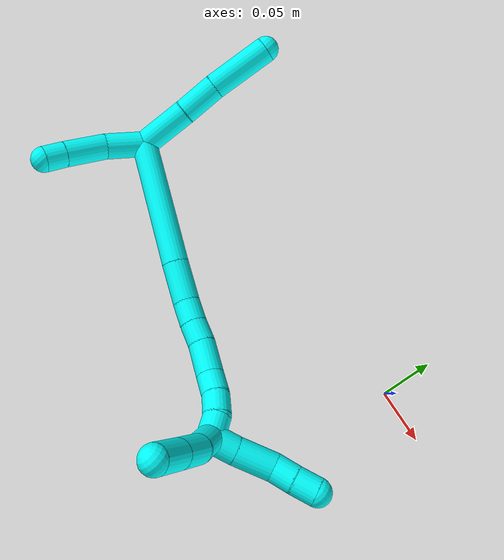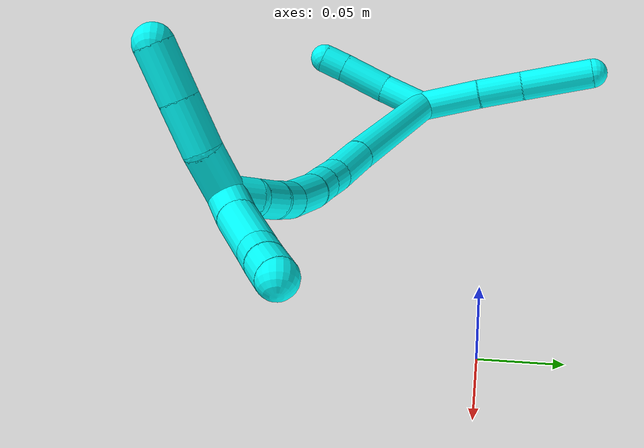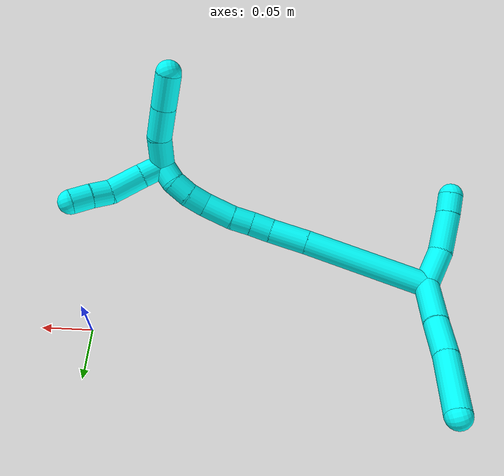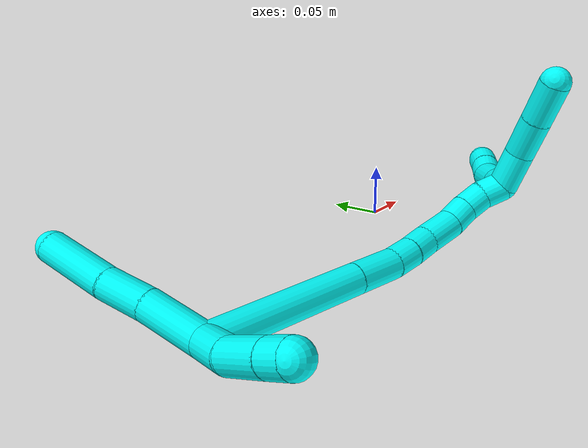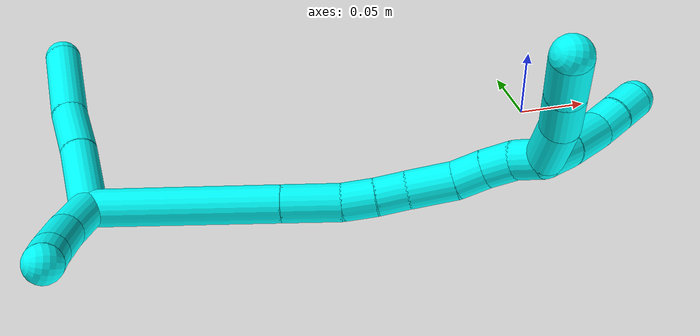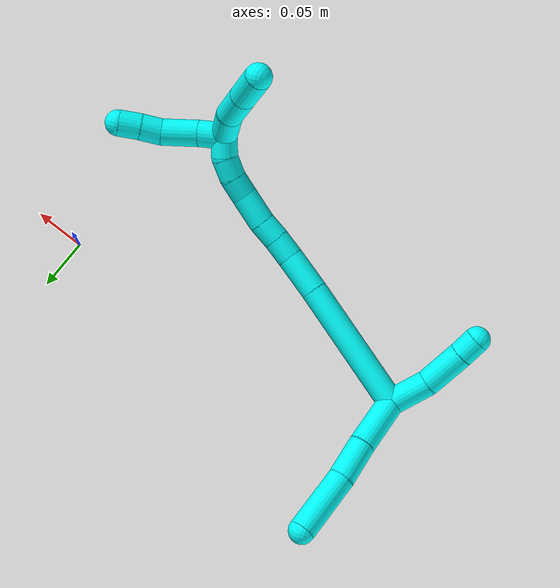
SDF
<sdf version="1.7">
 <world name="default">
  <model name="3">
   <static>0</static>
   <link name="3">
    <collision name="collision-cylinder-e_1_2_8">
     <pose>-0.007556 0.024379 -0.001117 -1.61658 -0.300245 0.31409</pose>
     <geometry><cylinder><radius>0.0125</radius><length>0.051095</length></cylinder></geometry>
     <surface>
      <friction><ode><mu>1.16</mu><mu2>1.16</mu2><slip1>0</slip1><slip2>0</slip2></ode></friction>
      <contact><ode><kp>1e+06</kp><kd>1</kd><max_vel>0</max_vel><min_depth>0.001</min_depth></ode></contact>
     </surface>
    </collision>
    <visual name="visual-cylinder-e_1_2_8">
     <pose>-0.007556 0.024379 -0.001117 -1.61658 -0.300245 0.31409</pose>
     <geometry><cylinder><radius>0.0125</radius><length>0.051095</length></cylinder></geometry>
     <material><ambient>0.003922 1 0.996078 1</ambient></material>
    </visual>
    <collision name="collision-cylinder-e_2_8_9">
     <pose>-0.021895 0.066423 -0.002556 -1.58902 -0.366581 0.37317</pose>
     <geometry><cylinder><radius>0.0125</radius><length>0.03785</length></cylinder></geometry>
     <surface>
      <friction><ode><mu>1.16</mu><mu2>1.16</mu2><slip1>0</slip1><slip2>0</slip2></ode></friction>
      <contact><ode><kp>1e+06</kp><kd>1</kd><max_vel>0</max_vel><min_depth>0.001</min_depth></ode></contact>
     </surface>
    </collision>
    <visual name="visual-cylinder-e_2_8_9">
     <pose>-0.021895 0.066423 -0.002556 -1.58902 -0.366581 0.37317</pose>
     <geometry><cylinder><radius>0.0125</radius><length>0.03785</length></cylinder></geometry>
     <material><ambient>0.003922 1 0.996078 1</ambient></material>
    </visual>
    <collision name="collision-cylinder-e_3_9_6">
     <pose>-0.037811 0.113103 -0.005454 -1.65934 -0.303829 0.331505</pose>
     <geometry><cylinder><radius>0.0125</radius><length>0.061055</length></cylinder></geometry>
     <surface>
      <friction><ode><mu>1.16</mu><mu2>1.16</mu2><slip1>0</slip1><slip2>0</slip2></ode></friction>
      <contact><ode><kp>1e+06</kp><kd>1</kd><max_vel>0</max_vel><min_depth>0.001</min_depth></ode></contact>
     </surface>
    </collision>
    <visual name="visual-cylinder-e_3_9_6">
     <pose>-0.037811 0.113103 -0.005454 -1.65934 -0.303829 0.331505</pose>
     <geometry><cylinder><radius>0.0125</radius><length>0.061055</length></cylinder></geometry>
     <material><ambient>0.003922 1 0.996078 1</ambient></material>
    </visual>
    <collision name="collision-cylinder-e_1_2_10">
     <pose>0.008482 -0.01277 0.011734 0.827634 0.454873 0.202591</pose>
     <geometry><cylinder><radius>0.0125</radius><length>0.03861</length></cylinder></geometry>
     <surface>
      <friction><ode><mu>1.16</mu><mu2>1.16</mu2><slip1>0</slip1><slip2>0</slip2></ode></friction>
      <contact><ode><kp>1e+06</kp><kd>1</kd><max_vel>0</max_vel><min_depth>0.001</min_depth></ode></contact>
     </surface>
    </collision>
    <visual name="visual-cylinder-e_1_2_10">
     <pose>0.008482 -0.01277 0.011734 0.827634 0.454873 0.202591</pose>
     <geometry><cylinder><radius>0.0125</radius><length>0.03861</length></cylinder></geometry>
     <material><ambient>0.003922 1 0.996078 1</ambient></material>
    </visual>
    <collision name="collision-cylinder-e_2_10_11">
     <pose>0.03026 -0.037691 0.033364 0.88738 0.70358 0.345446</pose>
     <geometry><cylinder><radius>0.0125</radius><length>0.041104</length></cylinder></geometry>
     <surface>
      <friction><ode><mu>1.16</mu><mu2>1.16</mu2><slip1>0</slip1><slip2>0</slip2></ode></friction>
      <contact><ode><kp>1e+06</kp><kd>1</kd><max_vel>0</max_vel><min_depth>0.001</min_depth></ode></contact>
     </surface>
    </collision>
    <visual name="visual-cylinder-e_2_10_11">
     <pose>0.03026 -0.037691 0.033364 0.88738 0.70358 0.345446</pose>
     <geometry><cylinder><radius>0.0125</radius><length>0.041104</length></cylinder></geometry>
     <material><ambient>0.003922 1 0.996078 1</ambient></material>
    </visual>
    <collision name="collision-cylinder-e_3_11_5">
     <pose>0.050306 -0.055962 0.047718 0.941063 0.728149 0.382894</pose>
     <geometry><cylinder><radius>0.0125</radius><length>0.020286</length></cylinder></geometry>
     <surface>
      <friction><ode><mu>1.16</mu><mu2>1.16</mu2><slip1>0</slip1><slip2>0</slip2></ode></friction>
      <contact><ode><kp>1e+06</kp><kd>1</kd><max_vel>0</max_vel><min_depth>0.001</min_depth></ode></contact>
     </surface>
    </collision>
    <visual name="visual-cylinder-e_3_11_5">
     <pose>0.050306 -0.055962 0.047718 0.941063 0.728149 0.382894</pose>
     <geometry><cylinder><radius>0.0125</radius><length>0.020286</length></cylinder></geometry>
     <material><ambient>0.003922 1 0.996078 1</ambient></material>
    </visual>
    <collision name="collision-cylinder-e_1_2_12">
     <pose>0.037867 -0.011302 -0.049805 2.91845 0.638004 2.48752</pose>
     <geometry><cylinder><radius>0.0125</radius><length>0.127157</length></cylinder></geometry>
     <surface>
      <friction><ode><mu>1.16</mu><mu2>1.16</mu2><slip1>0</slip1><slip2>0</slip2></ode></friction>
      <contact><ode><kp>1e+06</kp><kd>1</kd><max_vel>0</max_vel><min_depth>0.001</min_depth></ode></contact>
     </surface>
    </collision>
    <visual name="visual-cylinder-e_1_2_12">
     <pose>0.037867 -0.011302 -0.049805 2.91845 0.638004 2.48752</pose>
     <geometry><cylinder><radius>0.0125</radius><length>0.127157</length></cylinder></geometry>
     <material><ambient>0.003922 1 0.996078 1</ambient></material>
    </visual>
    <collision name="collision-cylinder-e_2_12_13">
     <pose>0.08689 -0.025871 -0.115141 2.93423 0.61271 2.50596</pose>
     <geometry><cylinder><radius>0.0125</radius><length>0.038798</length></cylinder></geometry>
     <surface>
      <friction><ode><mu>1.16</mu><mu2>1.16</mu2><slip1>0</slip1><slip2>0</slip2></ode></friction>
      <contact><ode><kp>1e+06</kp><kd>1</kd><max_vel>0</max_vel><min_depth>0.001</min_depth></ode></contact>
     </surface>
    </collision>
    <visual name="visual-cylinder-e_2_12_13">
     <pose>0.08689 -0.025871 -0.115141 2.93423 0.61271 2.50596</pose>
     <geometry><cylinder><radius>0.0125</radius><length>0.038798</length></cylinder></geometry>
     <material><ambient>0.003922 1 0.996078 1</ambient></material>
    </visual>
    <collision name="collision-cylinder-e_3_13_14">
     <pose>0.105161 -0.029831 -0.138929 3.05796 0.709442 2.91661</pose>
     <geometry><cylinder><radius>0.0125</radius><length>0.021846</length></cylinder></geometry>
     <surface>
      <friction><ode><mu>1.16</mu><mu2>1.16</mu2><slip1>0</slip1><slip2>0</slip2></ode></friction>
      <contact><ode><kp>1e+06</kp><kd>1</kd><max_vel>0</max_vel><min_depth>0.001</min_depth></ode></contact>
     </surface>
    </collision>
    <visual name="visual-cylinder-e_3_13_14">
     <pose>0.105161 -0.029831 -0.138929 3.05796 0.709442 2.91661</pose>
     <geometry><cylinder><radius>0.0125</radius><length>0.021846</length></cylinder></geometry>
     <material><ambient>0.003922 1 0.996078 1</ambient></material>
    </visual>
    <collision name="collision-cylinder-e_4_14_15">
     <pose>0.118968 -0.03039 -0.155153 -3.12479 0.698606 -3.09548</pose>
     <geometry><cylinder><radius>0.0125</radius><length>0.020809</length></cylinder></geometry>
     <surface>
      <friction><ode><mu>1.16</mu><mu2>1.16</mu2><slip1>0</slip1><slip2>0</slip2></ode></friction>
      <contact><ode><kp>1e+06</kp><kd>1</kd><max_vel>0</max_vel><min_depth>0.001</min_depth></ode></contact>
     </surface>
    </collision>
    <visual name="visual-cylinder-e_4_14_15">
     <pose>0.118968 -0.03039 -0.155153 -3.12479 0.698606 -3.09548</pose>
     <geometry><cylinder><radius>0.0125</radius><length>0.020809</length></cylinder></geometry>
     <material><ambient>0.003922 1 0.996078 1</ambient></material>
    </visual>
    <collision name="collision-cylinder-e_5_15_16">
     <pose>0.13694 -0.031141 -0.173648 3.05775 0.818123 2.94867</pose>
     <geometry><cylinder><radius>0.0125</radius><length>0.030913</length></cylinder></geometry>
     <surface>
      <friction><ode><mu>1.16</mu><mu2>1.16</mu2><slip1>0</slip1><slip2>0</slip2></ode></friction>
      <contact><ode><kp>1e+06</kp><kd>1</kd><max_vel>0</max_vel><min_depth>0.001</min_depth></ode></contact>
     </surface>
    </collision>
    <visual name="visual-cylinder-e_5_15_16">
     <pose>0.13694 -0.031141 -0.173648 3.05775 0.818123 2.94867</pose>
     <geometry><cylinder><radius>0.0125</radius><length>0.030913</length></cylinder></geometry>
     <material><ambient>0.003922 1 0.996078 1</ambient></material>
    </visual>
    <collision name="collision-cylinder-e_6_16_17">
     <pose>0.156538 -0.031353 -0.189861 -3.0239 0.967986 -2.91839</pose>
     <geometry><cylinder><radius>0.0125</radius><length>0.020193</length></cylinder></geometry>
     <surface>
      <friction><ode><mu>1.16</mu><mu2>1.16</mu2><slip1>0</slip1><slip2>0</slip2></ode></friction>
      <contact><ode><kp>1e+06</kp><kd>1</kd><max_vel>0</max_vel><min_depth>0.001</min_depth></ode></contact>
     </surface>
    </collision>
    <visual name="visual-cylinder-e_6_16_17">
     <pose>0.156538 -0.031353 -0.189861 -3.0239 0.967986 -2.91839</pose>
     <geometry><cylinder><radius>0.0125</radius><length>0.020193</length></cylinder></geometry>
     <material><ambient>0.003922 1 0.996078 1</ambient></material>
    </visual>
    <collision name="collision-cylinder-e_7_17_18">
     <pose>0.173839 -0.031419 -0.200146 2.9826 1.0924 2.88098</pose>
     <geometry><cylinder><radius>0.0125</radius><length>0.02024</length></cylinder></geometry>
     <surface>
      <friction><ode><mu>1.16</mu><mu2>1.16</mu2><slip1>0</slip1><slip2>0</slip2></ode></friction>
      <contact><ode><kp>1e+06</kp><kd>1</kd><max_vel>0</max_vel><min_depth>0.001</min_depth></ode></contact>
     </surface>
    </collision>
    <visual name="visual-cylinder-e_7_17_18">
     <pose>0.173839 -0.031419 -0.200146 2.9826 1.0924 2.88098</pose>
     <geometry><cylinder><radius>0.0125</radius><length>0.02024</length></cylinder></geometry>
     <material><ambient>0.003922 1 0.996078 1</ambient></material>
    </visual>
    <collision name="collision-cylinder-e_8_18_1">
     <pose>0.191795 -0.035776 -0.207364 2.19713 1.10887 1.76216</pose>
     <geometry><cylinder><radius>0.0125</radius><length>0.020047</length></cylinder></geometry>
     <surface>
      <friction><ode><mu>1.16</mu><mu2>1.16</mu2><slip1>0</slip1><slip2>0</slip2></ode></friction>
      <contact><ode><kp>1e+06</kp><kd>1</kd><max_vel>0</max_vel><min_depth>0.001</min_depth></ode></contact>
     </surface>
    </collision>
    <visual name="visual-cylinder-e_8_18_1">
     <pose>0.191795 -0.035776 -0.207364 2.19713 1.10887 1.76216</pose>
     <geometry><cylinder><radius>0.0125</radius><length>0.020047</length></cylinder></geometry>
     <material><ambient>0.003922 1 0.996078 1</ambient></material>
    </visual>
    <collision name="collision-cylinder-e_1_1_19">
     <pose>0.215485 -0.036398 -0.204008 -0.46489 1.14445 -0.302623</pose>
     <geometry><cylinder><radius>0.0125</radius><length>0.032329</length></cylinder></geometry>
     <surface>
      <friction><ode><mu>1.16</mu><mu2>1.16</mu2><slip1>0</slip1><slip2>0</slip2></ode></friction>
      <contact><ode><kp>1e+06</kp><kd>1</kd><max_vel>0</max_vel><min_depth>0.001</min_depth></ode></contact>
     </surface>
    </collision>
    <visual name="visual-cylinder-e_1_1_19">
     <pose>0.215485 -0.036398 -0.204008 -0.46489 1.14445 -0.302623</pose>
     <geometry><cylinder><radius>0.0125</radius><length>0.032329</length></cylinder></geometry>
     <material><ambient>0.003922 1 0.996078 1</ambient></material>
    </visual>
    <collision name="collision-cylinder-e_2_19_20">
     <pose>0.243515 -0.03129 -0.188606 -0.220304 0.943091 -0.112673</pose>
     <geometry><cylinder><radius>0.0125</radius><length>0.032896</length></cylinder></geometry>
     <surface>
      <friction><ode><mu>1.16</mu><mu2>1.16</mu2><slip1>0</slip1><slip2>0</slip2></ode></friction>
      <contact><ode><kp>1e+06</kp><kd>1</kd><max_vel>0</max_vel><min_depth>0.001</min_depth></ode></contact>
     </surface>
    </collision>
    <visual name="visual-cylinder-e_2_19_20">
     <pose>0.243515 -0.03129 -0.188606 -0.220304 0.943091 -0.112673</pose>
     <geometry><cylinder><radius>0.0125</radius><length>0.032896</length></cylinder></geometry>
     <material><ambient>0.003922 1 0.996078 1</ambient></material>
    </visual>
    <collision name="collision-cylinder-e_3_20_4">
     <pose>0.270822 -0.026877 -0.16912 -0.224954 0.935358 -0.113971</pose>
     <geometry><cylinder><radius>0.0125</radius><length>0.034775</length></cylinder></geometry>
     <surface>
      <friction><ode><mu>1.16</mu><mu2>1.16</mu2><slip1>0</slip1><slip2>0</slip2></ode></friction>
      <contact><ode><kp>1e+06</kp><kd>1</kd><max_vel>0</max_vel><min_depth>0.001</min_depth></ode></contact>
     </surface>
    </collision>
    <visual name="visual-cylinder-e_3_20_4">
     <pose>0.270822 -0.026877 -0.16912 -0.224954 0.935358 -0.113971</pose>
     <geometry><cylinder><radius>0.0125</radius><length>0.034775</length></cylinder></geometry>
     <material><ambient>0.003922 1 0.996078 1</ambient></material>
    </visual>
    <collision name="collision-cylinder-e_1_1_21">
     <pose>0.20092 -0.034817 -0.220846 -2.74277 0.012883 -0.063724</pose>
     <geometry><cylinder><radius>0.0125</radius><length>0.023579</length></cylinder></geometry>
     <surface>
      <friction><ode><mu>1.16</mu><mu2>1.16</mu2><slip1>0</slip1><slip2>0</slip2></ode></friction>
      <contact><ode><kp>1e+06</kp><kd>1</kd><max_vel>0</max_vel><min_depth>0.001</min_depth></ode></contact>
     </surface>
    </collision>
    <visual name="visual-cylinder-e_1_1_21">
     <pose>0.20092 -0.034817 -0.220846 -2.74277 0.012883 -0.063724</pose>
     <geometry><cylinder><radius>0.0125</radius><length>0.023579</length></cylinder></geometry>
     <material><ambient>0.003922 1 0.996078 1</ambient></material>
    </visual>
    <collision name="collision-cylinder-e_2_21_22">
     <pose>0.200884 -0.022128 -0.2474 -2.6645 -0.010631 0.04371</pose>
     <geometry><cylinder><radius>0.0125</radius><length>0.035327</length></cylinder></geometry>
     <surface>
      <friction><ode><mu>1.16</mu><mu2>1.16</mu2><slip1>0</slip1><slip2>0</slip2></ode></friction>
      <contact><ode><kp>1e+06</kp><kd>1</kd><max_vel>0</max_vel><min_depth>0.001</min_depth></ode></contact>
     </surface>
    </collision>
    <visual name="visual-cylinder-e_2_21_22">
     <pose>0.200884 -0.022128 -0.2474 -2.6645 -0.010631 0.04371</pose>
     <geometry><cylinder><radius>0.0125</radius><length>0.035327</length></cylinder></geometry>
     <material><ambient>0.003922 1 0.996078 1</ambient></material>
    </visual>
    <collision name="collision-cylinder-e_3_22_23">
     <pose>0.203633 -0.008723 -0.271246 -2.56582 0.293277 -0.925356</pose>
     <geometry><cylinder><radius>0.0125</radius><length>0.020317</length></cylinder></geometry>
     <surface>
      <friction><ode><mu>1.16</mu><mu2>1.16</mu2><slip1>0</slip1><slip2>0</slip2></ode></friction>
      <contact><ode><kp>1e+06</kp><kd>1</kd><max_vel>0</max_vel><min_depth>0.001</min_depth></ode></contact>
     </surface>
    </collision>
    <visual name="visual-cylinder-e_3_22_23">
     <pose>0.203633 -0.008723 -0.271246 -2.56582 0.293277 -0.925356</pose>
     <geometry><cylinder><radius>0.0125</radius><length>0.020317</length></cylinder></geometry>
     <material><ambient>0.003922 1 0.996078 1</ambient></material>
    </visual>
    <collision name="collision-cylinder-e_4_23_3">
     <pose>0.208779 0.00207 -0.287937 -2.56928 0.214347 -0.701097</pose>
     <geometry><cylinder><radius>0.0125</radius><length>0.020778</length></cylinder></geometry>
     <surface>
      <friction><ode><mu>1.16</mu><mu2>1.16</mu2><slip1>0</slip1><slip2>0</slip2></ode></friction>
      <contact><ode><kp>1e+06</kp><kd>1</kd><max_vel>0</max_vel><min_depth>0.001</min_depth></ode></contact>
     </surface>
    </collision>
    <visual name="visual-cylinder-e_4_23_3">
     <pose>0.208779 0.00207 -0.287937 -2.56928 0.214347 -0.701097</pose>
     <geometry><cylinder><radius>0.0125</radius><length>0.020778</length></cylinder></geometry>
     <material><ambient>0.003922 1 0.996078 1</ambient></material>
    </visual>
    <collision name="collision-sphere-3">
     <pose>0.210989 0.007567 -0.29647 0 -0 0</pose>
     <geometry><sphere><radius>0.0125</radius></sphere></geometry>
     <surface>
      <friction><ode><mu>1.16</mu><mu2>1.16</mu2><slip1>0</slip1><slip2>0</slip2></ode></friction>
      <contact><ode><kp>1e+06</kp><kd>1</kd><max_vel>0</max_vel><min_depth>0.001</min_depth></ode></contact>
     </surface>
    </collision>
    <visual name="visual-sphere-3">
     <pose>0.210989 0.007567 -0.29647 0 -0 0</pose>
     <geometry><sphere><radius>0.0125</radius></sphere></geometry>
     <material><ambient>0.003922 1 0.996078 1</ambient></material>
    </visual>
    <collision name="collision-sphere-23">
     <pose>0.206569 -0.003428 -0.279403 0 -0 0</pose>
     <geometry><sphere><radius>0.0125</radius></sphere></geometry>
     <surface>
      <friction><ode><mu>1.16</mu><mu2>1.16</mu2><slip1>0</slip1><slip2>0</slip2></ode></friction>
      <contact><ode><kp>1e+06</kp><kd>1</kd><max_vel>0</max_vel><min_depth>0.001</min_depth></ode></contact>
     </surface>
    </collision>
    <visual name="visual-sphere-23">
     <pose>0.206569 -0.003428 -0.279403 0 -0 0</pose>
     <geometry><sphere><radius>0.0125</radius></sphere></geometry>
     <material><ambient>0.003922 1 0.996078 1</ambient></material>
    </visual>
    <collision name="collision-sphere-22">
     <pose>0.200696 -0.014018 -0.26309 0 -0 0</pose>
     <geometry><sphere><radius>0.0125</radius></sphere></geometry>
     <surface>
      <friction><ode><mu>1.16</mu><mu2>1.16</mu2><slip1>0</slip1><slip2>0</slip2></ode></friction>
      <contact><ode><kp>1e+06</kp><kd>1</kd><max_vel>0</max_vel><min_depth>0.001</min_depth></ode></contact>
     </surface>
    </collision>
    <visual name="visual-sphere-22">
     <pose>0.200696 -0.014018 -0.26309 0 -0 0</pose>
     <geometry><sphere><radius>0.0125</radius></sphere></geometry>
     <material><ambient>0.003922 1 0.996078 1</ambient></material>
    </visual>
    <collision name="collision-sphere-21">
     <pose>0.201072 -0.030239 -0.231709 0 -0 0</pose>
     <geometry><sphere><radius>0.0125</radius></sphere></geometry>
     <surface>
      <friction><ode><mu>1.16</mu><mu2>1.16</mu2><slip1>0</slip1><slip2>0</slip2></ode></friction>
      <contact><ode><kp>1e+06</kp><kd>1</kd><max_vel>0</max_vel><min_depth>0.001</min_depth></ode></contact>
     </surface>
    </collision>
    <visual name="visual-sphere-21">
     <pose>0.201072 -0.030239 -0.231709 0 -0 0</pose>
     <geometry><sphere><radius>0.0125</radius></sphere></geometry>
     <material><ambient>0.003922 1 0.996078 1</ambient></material>
    </visual>
    <collision name="collision-sphere-4">
     <pose>0.284815 -0.024575 -0.15906 0 -0 0</pose>
     <geometry><sphere><radius>0.0125</radius></sphere></geometry>
     <surface>
      <friction><ode><mu>1.16</mu><mu2>1.16</mu2><slip1>0</slip1><slip2>0</slip2></ode></friction>
      <contact><ode><kp>1e+06</kp><kd>1</kd><max_vel>0</max_vel><min_depth>0.001</min_depth></ode></contact>
     </surface>
    </collision>
    <visual name="visual-sphere-4">
     <pose>0.284815 -0.024575 -0.15906 0 -0 0</pose>
     <geometry><sphere><radius>0.0125</radius></sphere></geometry>
     <material><ambient>0.003922 1 0.996078 1</ambient></material>
    </visual>
    <collision name="collision-sphere-20">
     <pose>0.256828 -0.029179 -0.17918 0 -0 0</pose>
     <geometry><sphere><radius>0.0125</radius></sphere></geometry>
     <surface>
      <friction><ode><mu>1.16</mu><mu2>1.16</mu2><slip1>0</slip1><slip2>0</slip2></ode></friction>
      <contact><ode><kp>1e+06</kp><kd>1</kd><max_vel>0</max_vel><min_depth>0.001</min_depth></ode></contact>
     </surface>
    </collision>
    <visual name="visual-sphere-20">
     <pose>0.256828 -0.029179 -0.17918 0 -0 0</pose>
     <geometry><sphere><radius>0.0125</radius></sphere></geometry>
     <material><ambient>0.003922 1 0.996078 1</ambient></material>
    </visual>
    <collision name="collision-sphere-11">
     <pose>0.043556 -0.049843 0.04326 0 -0 0</pose>
     <geometry><sphere><radius>0.0125</radius></sphere></geometry>
     <surface>
      <friction><ode><mu>1.16</mu><mu2>1.16</mu2><slip1>0</slip1><slip2>0</slip2></ode></friction>
      <contact><ode><kp>1e+06</kp><kd>1</kd><max_vel>0</max_vel><min_depth>0.001</min_depth></ode></contact>
     </surface>
    </collision>
    <visual name="visual-sphere-11">
     <pose>0.043556 -0.049843 0.04326 0 -0 0</pose>
     <geometry><sphere><radius>0.0125</radius></sphere></geometry>
     <material><ambient>0.003922 1 0.996078 1</ambient></material>
    </visual>
    <collision name="collision-sphere-10">
     <pose>0.016963 -0.025539 0.023468 0 -0 0</pose>
     <geometry><sphere><radius>0.0125</radius></sphere></geometry>
     <surface>
      <friction><ode><mu>1.16</mu><mu2>1.16</mu2><slip1>0</slip1><slip2>0</slip2></ode></friction>
      <contact><ode><kp>1e+06</kp><kd>1</kd><max_vel>0</max_vel><min_depth>0.001</min_depth></ode></contact>
     </surface>
    </collision>
    <visual name="visual-sphere-10">
     <pose>0.016963 -0.025539 0.023468 0 -0 0</pose>
     <geometry><sphere><radius>0.0125</radius></sphere></geometry>
     <material><ambient>0.003922 1 0.996078 1</ambient></material>
    </visual>
    <collision name="collision-sphere-6">
     <pose>-0.046944 0.142118 -0.008029 0 -0 0</pose>
     <geometry><sphere><radius>0.0125</radius></sphere></geometry>
     <surface>
      <friction><ode><mu>1.16</mu><mu2>1.16</mu2><slip1>0</slip1><slip2>0</slip2></ode></friction>
      <contact><ode><kp>1e+06</kp><kd>1</kd><max_vel>0</max_vel><min_depth>0.001</min_depth></ode></contact>
     </surface>
    </collision>
    <visual name="visual-sphere-6">
     <pose>-0.046944 0.142118 -0.008029 0 -0 0</pose>
     <geometry><sphere><radius>0.0125</radius></sphere></geometry>
     <material><ambient>0.003922 1 0.996078 1</ambient></material>
    </visual>
    <collision name="collision-sphere-9">
     <pose>-0.028678 0.084088 -0.002878 0 -0 0</pose>
     <geometry><sphere><radius>0.0125</radius></sphere></geometry>
     <surface>
      <friction><ode><mu>1.16</mu><mu2>1.16</mu2><slip1>0</slip1><slip2>0</slip2></ode></friction>
      <contact><ode><kp>1e+06</kp><kd>1</kd><max_vel>0</max_vel><min_depth>0.001</min_depth></ode></contact>
     </surface>
    </collision>
    <visual name="visual-sphere-9">
     <pose>-0.028678 0.084088 -0.002878 0 -0 0</pose>
     <geometry><sphere><radius>0.0125</radius></sphere></geometry>
     <material><ambient>0.003922 1 0.996078 1</ambient></material>
    </visual>
    <collision name="collision-sphere-2">
     <geometry><sphere><radius>0.0125</radius></sphere></geometry>
     <surface>
      <friction><ode><mu>1.16</mu><mu2>1.16</mu2><slip1>0</slip1><slip2>0</slip2></ode></friction>
      <contact><ode><kp>1e+06</kp><kd>1</kd><max_vel>0</max_vel><min_depth>0.001</min_depth></ode></contact>
     </surface>
    </collision>
    <visual name="visual-sphere-2">
     <geometry><sphere><radius>0.0125</radius></sphere></geometry>
     <material><ambient>0.003922 1 0.996078 1</ambient></material>
    </visual>
    <collision name="collision-sphere-19">
     <pose>0.230202 -0.033401 -0.198033 0 -0 0</pose>
     <geometry><sphere><radius>0.0125</radius></sphere></geometry>
     <surface>
      <friction><ode><mu>1.16</mu><mu2>1.16</mu2><slip1>0</slip1><slip2>0</slip2></ode></friction>
      <contact><ode><kp>1e+06</kp><kd>1</kd><max_vel>0</max_vel><min_depth>0.001</min_depth></ode></contact>
     </surface>
    </collision>
    <visual name="visual-sphere-19">
     <pose>0.230202 -0.033401 -0.198033 0 -0 0</pose>
     <geometry><sphere><radius>0.0125</radius></sphere></geometry>
     <material><ambient>0.003922 1 0.996078 1</ambient></material>
    </visual>
    <collision name="collision-sphere-8">
     <pose>-0.015112 0.048758 -0.002234 0 -0 0</pose>
     <geometry><sphere><radius>0.0125</radius></sphere></geometry>
     <surface>
      <friction><ode><mu>1.16</mu><mu2>1.16</mu2><slip1>0</slip1><slip2>0</slip2></ode></friction>
      <contact><ode><kp>1e+06</kp><kd>1</kd><max_vel>0</max_vel><min_depth>0.001</min_depth></ode></contact>
     </surface>
    </collision>
    <visual name="visual-sphere-8">
     <pose>-0.015112 0.048758 -0.002234 0 -0 0</pose>
     <geometry><sphere><radius>0.0125</radius></sphere></geometry>
     <material><ambient>0.003922 1 0.996078 1</ambient></material>
    </visual>
    <collision name="collision-sphere-5">
     <pose>0.057056 -0.06208 0.052177 0 -0 0</pose>
     <geometry><sphere><radius>0.0125</radius></sphere></geometry>
     <surface>
      <friction><ode><mu>1.16</mu><mu2>1.16</mu2><slip1>0</slip1><slip2>0</slip2></ode></friction>
      <contact><ode><kp>1e+06</kp><kd>1</kd><max_vel>0</max_vel><min_depth>0.001</min_depth></ode></contact>
     </surface>
    </collision>
    <visual name="visual-sphere-5">
     <pose>0.057056 -0.06208 0.052177 0 -0 0</pose>
     <geometry><sphere><radius>0.0125</radius></sphere></geometry>
     <material><ambient>0.003922 1 0.996078 1</ambient></material>
    </visual>
    <collision name="collision-sphere-12">
     <pose>0.075734 -0.022604 -0.099611 0 -0 0</pose>
     <geometry><sphere><radius>0.0125</radius></sphere></geometry>
     <surface>
      <friction><ode><mu>1.16</mu><mu2>1.16</mu2><slip1>0</slip1><slip2>0</slip2></ode></friction>
      <contact><ode><kp>1e+06</kp><kd>1</kd><max_vel>0</max_vel><min_depth>0.001</min_depth></ode></contact>
     </surface>
    </collision>
    <visual name="visual-sphere-12">
     <pose>0.075734 -0.022604 -0.099611 0 -0 0</pose>
     <geometry><sphere><radius>0.0125</radius></sphere></geometry>
     <material><ambient>0.003922 1 0.996078 1</ambient></material>
    </visual>
    <collision name="collision-sphere-13">
     <pose>0.098046 -0.029139 -0.130671 0 -0 0</pose>
     <geometry><sphere><radius>0.0125</radius></sphere></geometry>
     <surface>
      <friction><ode><mu>1.16</mu><mu2>1.16</mu2><slip1>0</slip1><slip2>0</slip2></ode></friction>
      <contact><ode><kp>1e+06</kp><kd>1</kd><max_vel>0</max_vel><min_depth>0.001</min_depth></ode></contact>
     </surface>
    </collision>
    <visual name="visual-sphere-13">
     <pose>0.098046 -0.029139 -0.130671 0 -0 0</pose>
     <geometry><sphere><radius>0.0125</radius></sphere></geometry>
     <material><ambient>0.003922 1 0.996078 1</ambient></material>
    </visual>
    <collision name="collision-sphere-14">
     <pose>0.112276 -0.030523 -0.147188 0 -0 0</pose>
     <geometry><sphere><radius>0.0125</radius></sphere></geometry>
     <surface>
      <friction><ode><mu>1.16</mu><mu2>1.16</mu2><slip1>0</slip1><slip2>0</slip2></ode></friction>
      <contact><ode><kp>1e+06</kp><kd>1</kd><max_vel>0</max_vel><min_depth>0.001</min_depth></ode></contact>
     </surface>
    </collision>
    <visual name="visual-sphere-14">
     <pose>0.112276 -0.030523 -0.147188 0 -0 0</pose>
     <geometry><sphere><radius>0.0125</radius></sphere></geometry>
     <material><ambient>0.003922 1 0.996078 1</ambient></material>
    </visual>
    <collision name="collision-sphere-15">
     <pose>0.125659 -0.030256 -0.163119 0 -0 0</pose>
     <geometry><sphere><radius>0.0125</radius></sphere></geometry>
     <surface>
      <friction><ode><mu>1.16</mu><mu2>1.16</mu2><slip1>0</slip1><slip2>0</slip2></ode></friction>
      <contact><ode><kp>1e+06</kp><kd>1</kd><max_vel>0</max_vel><min_depth>0.001</min_depth></ode></contact>
     </surface>
    </collision>
    <visual name="visual-sphere-15">
     <pose>0.125659 -0.030256 -0.163119 0 -0 0</pose>
     <geometry><sphere><radius>0.0125</radius></sphere></geometry>
     <material><ambient>0.003922 1 0.996078 1</ambient></material>
    </visual>
    <collision name="collision-sphere-16">
     <pose>0.148221 -0.032026 -0.184177 0 -0 0</pose>
     <geometry><sphere><radius>0.0125</radius></sphere></geometry>
     <surface>
      <friction><ode><mu>1.16</mu><mu2>1.16</mu2><slip1>0</slip1><slip2>0</slip2></ode></friction>
      <contact><ode><kp>1e+06</kp><kd>1</kd><max_vel>0</max_vel><min_depth>0.001</min_depth></ode></contact>
     </surface>
    </collision>
    <visual name="visual-sphere-16">
     <pose>0.148221 -0.032026 -0.184177 0 -0 0</pose>
     <geometry><sphere><radius>0.0125</radius></sphere></geometry>
     <material><ambient>0.003922 1 0.996078 1</ambient></material>
    </visual>
    <collision name="collision-sphere-17">
     <pose>0.164855 -0.030681 -0.195546 0 -0 0</pose>
     <geometry><sphere><radius>0.0125</radius></sphere></geometry>
     <surface>
      <friction><ode><mu>1.16</mu><mu2>1.16</mu2><slip1>0</slip1><slip2>0</slip2></ode></friction>
      <contact><ode><kp>1e+06</kp><kd>1</kd><max_vel>0</max_vel><min_depth>0.001</min_depth></ode></contact>
     </surface>
    </collision>
    <visual name="visual-sphere-17">
     <pose>0.164855 -0.030681 -0.195546 0 -0 0</pose>
     <geometry><sphere><radius>0.0125</radius></sphere></geometry>
     <material><ambient>0.003922 1 0.996078 1</ambient></material>
    </visual>
    <collision name="collision-sphere-18">
     <pose>0.182822 -0.032156 -0.204746 0 -0 0</pose>
     <geometry><sphere><radius>0.0125</radius></sphere></geometry>
     <surface>
      <friction><ode><mu>1.16</mu><mu2>1.16</mu2><slip1>0</slip1><slip2>0</slip2></ode></friction>
      <contact><ode><kp>1e+06</kp><kd>1</kd><max_vel>0</max_vel><min_depth>0.001</min_depth></ode></contact>
     </surface>
    </collision>
    <visual name="visual-sphere-18">
     <pose>0.182822 -0.032156 -0.204746 0 -0 0</pose>
     <geometry><sphere><radius>0.0125</radius></sphere></geometry>
     <material><ambient>0.003922 1 0.996078 1</ambient></material>
    </visual>
    <collision name="collision-sphere-1">
     <pose>0.200768 -0.039395 -0.209983 0 -0 0</pose>
     <geometry><sphere><radius>0.0125</radius></sphere></geometry>
     <surface>
      <friction><ode><mu>1.16</mu><mu2>1.16</mu2><slip1>0</slip1><slip2>0</slip2></ode></friction>
      <contact><ode><kp>1e+06</kp><kd>1</kd><max_vel>0</max_vel><min_depth>0.001</min_depth></ode></contact>
     </surface>
    </collision>
    <visual name="visual-sphere-1">
     <pose>0.200768 -0.039395 -0.209983 0 -0 0</pose>
     <geometry><sphere><radius>0.0125</radius></sphere></geometry>
     <material><ambient>0.003922 1 0.996078 1</ambient></material>
    </visual>
    <inertial>
     <pose>0.095318 -0.005418 -0.101719 0 -0 0</pose>
     <mass>0.75</mass>
     <inertia>
      <ixx>6.9e-05</ixx>
      <ixy>0</ixy>
      <ixz>0</ixz>
      <iyy>0.000297</iyy>
      <iyz>0</iyz>
      <izz>-0.000143</izz>
     </inertia>
    </inertial>
   </link>
   <pose>-0.328851 -0.061515 0.012074 0.947425 -0.879223 -0.871241</pose>
  </model>
 </world>
</sdf>
